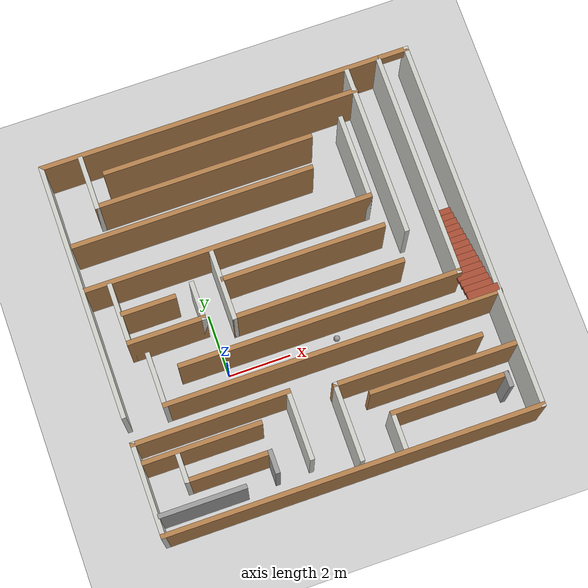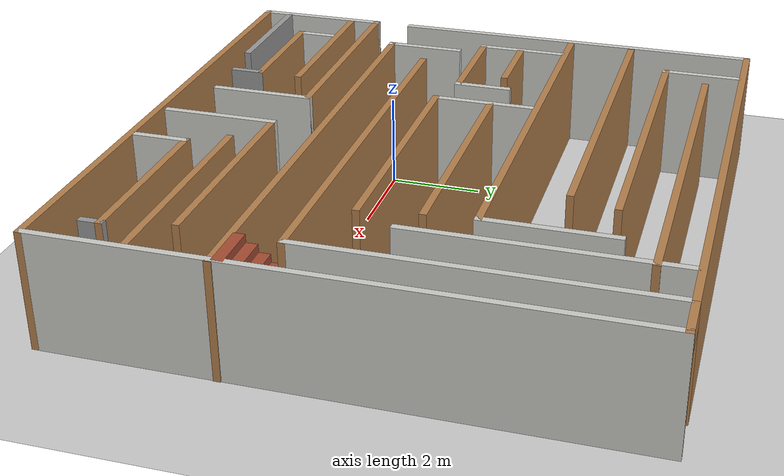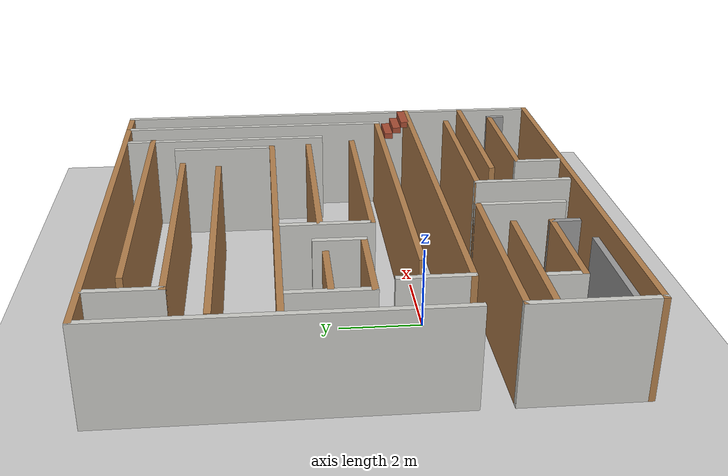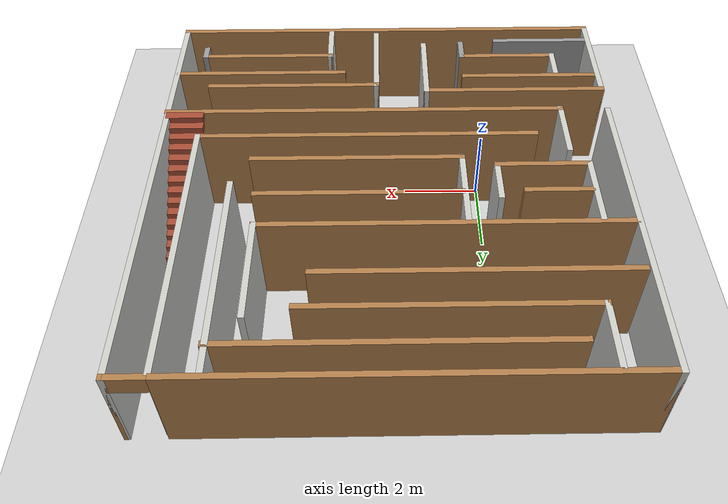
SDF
<sdf version="1.6">
 <world name="default">
  <model name="ground_plane">
   <static>1</static>
   <link name="link">
    <collision name="collision">
     <geometry><plane><normal>0 0 1</normal><size>100 100</size></plane></geometry>
     <surface>
      <contact><collide_bitmask>65535</collide_bitmask></contact>
      <friction><ode><mu>100</mu><mu2>50</mu2></ode></friction>
     </surface>
    </collision>
    <visual name="visual">
     <cast_shadows>0</cast_shadows>
     <geometry><plane><normal>0 0 1</normal><size>100 100</size></plane></geometry>
     <material>
      <script><uri>file://media/materials/scripts/gazebo.material</uri><name>Gazebo/Grey</name></script>
     </material>
    </visual>
   </link>
  </model>
  <light name="sun" type="directional">
   <pose>0 0 10 0 -0 0</pose>
   <diffuse>0.8 0.8 0.8 1</diffuse>
   <specular>0.2 0.2 0.2 1</specular>
   <attenuation>
    <range>1000</range>
    <constant>0.9</constant>
    <linear>0.01</linear>
    <quadratic>0.001</quadratic>
   </attenuation>
   <direction>-0.5 0.1 -0.9</direction>
  </light>
  <gravity>0 0 -9.8</gravity>
  <magnetic_field>6e-06 2.3e-05 -4.2e-05</magnetic_field>
  <atmosphere type="adiabatic"/>
  <physics name="default_physics" default="0" type="ode">
   <max_step_size>0.001</max_step_size>
   <real_time_factor>1</real_time_factor>
   <real_time_update_rate>1000</real_time_update_rate>
  </physics>
  <scene><ambient>0.4 0.4 0.4 1</ambient><background>0.7 0.7 0.7 1</background><shadows>1</shadows></scene>
  <spherical_coordinates>
   <surface_model>EARTH_WGS84</surface_model>
   <latitude_deg>0</latitude_deg>
   <longitude_deg>0</longitude_deg>
   <elevation>0</elevation>
   <heading_deg>0</heading_deg>
  </spherical_coordinates>
  <model name="my_ball">
   <link name="link">
    <inertial>
     <mass>1</mass>
     <inertia><ixx>0.1</ixx><ixy>0</ixy><ixz>0</ixz><iyy>0.1</iyy><iyz>0</iyz><izz>0.1</izz></inertia>
    </inertial>
    <visual name="visual">
     <geometry><sphere><radius>0.1</radius></sphere></geometry>
     <material>
      <script><name>Gazebo/Grey</name><uri>file://media/materials/scripts/gazebo.material</uri></script>
      <shader type="pixel"><normal_map>__default__</normal_map></shader>
      <ambient>1 1 1 1</ambient>
      <diffuse>1 1 1 1</diffuse>
      <specular>1 1 1 1</specular>
      <emissive>1 1 1 1</emissive>
      <lighting>1</lighting>
     </material>
    </visual>
    <collision name="collision">
     <geometry><sphere><radius>0.1</radius></sphere></geometry>
     <surface>
      <friction>
       <ode><mu>1</mu><mu2>1</mu2><fdir1>0 0 0</fdir1><slip1>0</slip1><slip2>0</slip2></ode>
       <torsional>
        <coefficient>1</coefficient>
        <patch_radius>0</patch_radius>
        <surface_radius>0</surface_radius>
        <use_patch_radius>1</use_patch_radius>
        <ode><slip>0</slip></ode>
       </torsional>
      </friction>
      <bounce><restitution_coefficient>0</restitution_coefficient><threshold>1e+06</threshold></bounce>
      <contact>
       <collide_without_contact>0</collide_without_contact>
       <collide_without_contact_bitmask>1</collide_without_contact_bitmask>
       <collide_bitmask>1</collide_bitmask>
       <ode>
        <soft_cfm>0</soft_cfm>
        <soft_erp>0.2</soft_erp>
        <kp>1e+13</kp>
        <kd>1</kd>
        <max_vel>0.01</max_vel>
        <min_depth>0</min_depth>
       </ode>
       <bullet>
        <split_impulse>1</split_impulse>
        <split_impulse_penetration_threshold>-0.01</split_impulse_penetration_threshold>
        <soft_cfm>0</soft_cfm>
        <soft_erp>0.2</soft_erp>
        <kp>1e+13</kp>
        <kd>1</kd>
       </bullet>
      </contact>
     </surface>
    </collision>
   </link>
   <static>0</static>
   <pose>3.53741 0.009797 0.1 1.59318 0.305816 1.43527</pose>
  </model>
  <model name="maze">
   <pose>2.49351 1.575 0 0 -0 0</pose>
   <link name="Stairs_1">
    <visual name="Stairs_1_Visual_0">
     <pose>5.44379 1.15451 0.083333 0 -0 0</pose>
     <geometry><box><size>1 0.233333 0.166667</size></box></geometry>
     <material>
      <script><uri>file://media/materials/scripts/gazebo.material</uri><name>Gazebo/Bricks</name></script>
      <ambient>1 1 1 1</ambient>
     </material>
     <meta><layer>0</layer></meta>
    </visual>
    <collision name="Stairs_1_Collision_0">
     <geometry><box><size>1 0.233333 0.166667</size></box></geometry>
     <pose>5.44379 1.15451 0.083333 0 -0 0</pose>
    </collision>
    <visual name="Stairs_1_Visual_1">
     <pose>5.44379 0.921173 0.25 0 -0 0</pose>
     <geometry><box><size>1 0.233333 0.166667</size></box></geometry>
     <material>
      <script><uri>file://media/materials/scripts/gazebo.material</uri><name>Gazebo/Bricks</name></script>
      <ambient>1 1 1 1</ambient>
     </material>
     <meta><layer>0</layer></meta>
    </visual>
    <collision name="Stairs_1_Collision_1">
     <geometry><box><size>1 0.233333 0.166667</size></box></geometry>
     <pose>5.44379 0.921173 0.25 0 -0 0</pose>
    </collision>
    <visual name="Stairs_1_Visual_2">
     <pose>5.44379 0.68784 0.416667 0 -0 0</pose>
     <geometry><box><size>1 0.233333 0.166667</size></box></geometry>
     <material>
      <script><uri>file://media/materials/scripts/gazebo.material</uri><name>Gazebo/Bricks</name></script>
      <ambient>1 1 1 1</ambient>
     </material>
     <meta><layer>0</layer></meta>
    </visual>
    <collision name="Stairs_1_Collision_2">
     <geometry><box><size>1 0.233333 0.166667</size></box></geometry>
     <pose>5.44379 0.68784 0.416667 0 -0 0</pose>
    </collision>
    <visual name="Stairs_1_Visual_3">
     <pose>5.44379 0.454506 0.583333 0 -0 0</pose>
     <geometry><box><size>1 0.233333 0.166667</size></box></geometry>
     <material>
      <script><uri>file://media/materials/scripts/gazebo.material</uri><name>Gazebo/Bricks</name></script>
      <ambient>1 1 1 1</ambient>
     </material>
     <meta><layer>0</layer></meta>
    </visual>
    <collision name="Stairs_1_Collision_3">
     <geometry><box><size>1 0.233333 0.166667</size></box></geometry>
     <pose>5.44379 0.454506 0.583333 0 -0 0</pose>
    </collision>
    <visual name="Stairs_1_Visual_4">
     <pose>5.44379 0.221173 0.75 0 -0 0</pose>
     <geometry><box><size>1 0.233333 0.166667</size></box></geometry>
     <material>
      <script><uri>file://media/materials/scripts/gazebo.material</uri><name>Gazebo/Bricks</name></script>
      <ambient>1 1 1 1</ambient>
     </material>
     <meta><layer>0</layer></meta>
    </visual>
    <collision name="Stairs_1_Collision_4">
     <geometry><box><size>1 0.233333 0.166667</size></box></geometry>
     <pose>5.44379 0.221173 0.75 0 -0 0</pose>
    </collision>
    <visual name="Stairs_1_Visual_5">
     <pose>5.44379 -0.01216 0.916667 0 -0 0</pose>
     <geometry><box><size>1 0.233333 0.166667</size></box></geometry>
     <material>
      <script><uri>file://media/materials/scripts/gazebo.material</uri><name>Gazebo/Bricks</name></script>
      <ambient>1 1 1 1</ambient>
     </material>
     <meta><layer>0</layer></meta>
    </visual>
    <collision name="Stairs_1_Collision_5">
     <geometry><box><size>1 0.233333 0.166667</size></box></geometry>
     <pose>5.44379 -0.01216 0.916667 0 -0 0</pose>
    </collision>
    <visual name="Stairs_1_Visual_6">
     <pose>5.44379 -0.245494 1.08333 0 -0 0</pose>
     <geometry><box><size>1 0.233333 0.166667</size></box></geometry>
     <material>
      <script><uri>file://media/materials/scripts/gazebo.material</uri><name>Gazebo/Bricks</name></script>
      <ambient>1 1 1 1</ambient>
     </material>
     <meta><layer>0</layer></meta>
    </visual>
    <collision name="Stairs_1_Collision_6">
     <geometry><box><size>1 0.233333 0.166667</size></box></geometry>
     <pose>5.44379 -0.245494 1.08333 0 -0 0</pose>
    </collision>
    <visual name="Stairs_1_Visual_7">
     <pose>5.44379 -0.478827 1.25 0 -0 0</pose>
     <geometry><box><size>1 0.233333 0.166667</size></box></geometry>
     <material>
      <script><uri>file://media/materials/scripts/gazebo.material</uri><name>Gazebo/Bricks</name></script>
      <ambient>1 1 1 1</ambient>
     </material>
     <meta><layer>0</layer></meta>
    </visual>
    <collision name="Stairs_1_Collision_7">
     <geometry><box><size>1 0.233333 0.166667</size></box></geometry>
     <pose>5.44379 -0.478827 1.25 0 -0 0</pose>
    </collision>
    <visual name="Stairs_1_Visual_8">
     <pose>5.44379 -0.71216 1.41667 0 -0 0</pose>
     <geometry><box><size>1 0.233333 0.166667</size></box></geometry>
     <material>
      <script><uri>file://media/materials/scripts/gazebo.material</uri><name>Gazebo/Bricks</name></script>
      <ambient>1 1 1 1</ambient>
     </material>
     <meta><layer>0</layer></meta>
    </visual>
    <collision name="Stairs_1_Collision_8">
     <geometry><box><size>1 0.233333 0.166667</size></box></geometry>
     <pose>5.44379 -0.71216 1.41667 0 -0 0</pose>
    </collision>
    <visual name="Stairs_1_Visual_9">
     <pose>5.44379 -0.945494 1.58333 0 -0 0</pose>
     <geometry><box><size>1 0.233333 0.166667</size></box></geometry>
     <material>
      <script><uri>file://media/materials/scripts/gazebo.material</uri><name>Gazebo/Bricks</name></script>
      <ambient>1 1 1 1</ambient>
     </material>
     <meta><layer>0</layer></meta>
    </visual>
    <collision name="Stairs_1_Collision_9">
     <geometry><box><size>1 0.233333 0.166667</size></box></geometry>
     <pose>5.44379 -0.945494 1.58333 0 -0 0</pose>
    </collision>
    <visual name="Stairs_1_Visual_10">
     <pose>5.44379 -1.17883 1.75 0 -0 0</pose>
     <geometry><box><size>1 0.233333 0.166667</size></box></geometry>
     <material>
      <script><uri>file://media/materials/scripts/gazebo.material</uri><name>Gazebo/Bricks</name></script>
      <ambient>1 1 1 1</ambient>
     </material>
     <meta><layer>0</layer></meta>
    </visual>
    <collision name="Stairs_1_Collision_10">
     <geometry><box><size>1 0.233333 0.166667</size></box></geometry>
     <pose>5.44379 -1.17883 1.75 0 -0 0</pose>
    </collision>
    <visual name="Stairs_1_Visual_11">
     <pose>5.44379 -1.41216 1.91667 0 -0 0</pose>
     <geometry><box><size>1 0.233333 0.166667</size></box></geometry>
     <material>
      <script><uri>file://media/materials/scripts/gazebo.material</uri><name>Gazebo/Bricks</name></script>
      <ambient>1 1 1 1</ambient>
     </material>
     <meta><layer>0</layer></meta>
    </visual>
    <collision name="Stairs_1_Collision_11">
     <geometry><box><size>1 0.233333 0.166667</size></box></geometry>
     <pose>5.44379 -1.41216 1.91667 0 -0 0</pose>
    </collision>
    <visual name="Stairs_1_Visual_12">
     <pose>5.44379 -1.64549 2.08333 0 -0 0</pose>
     <geometry><box><size>1 0.233333 0.166667</size></box></geometry>
     <material>
      <script><uri>file://media/materials/scripts/gazebo.material</uri><name>Gazebo/Bricks</name></script>
      <ambient>1 1 1 1</ambient>
     </material>
     <meta><layer>0</layer></meta>
    </visual>
    <collision name="Stairs_1_Collision_12">
     <geometry><box><size>1 0.233333 0.166667</size></box></geometry>
     <pose>5.44379 -1.64549 2.08333 0 -0 0</pose>
    </collision>
    <visual name="Stairs_1_Visual_13">
     <pose>5.44379 -1.87883 2.25 0 -0 0</pose>
     <geometry><box><size>1 0.233333 0.166667</size></box></geometry>
     <material>
      <script><uri>file://media/materials/scripts/gazebo.material</uri><name>Gazebo/Bricks</name></script>
      <ambient>1 1 1 1</ambient>
     </material>
     <meta><layer>0</layer></meta>
    </visual>
    <collision name="Stairs_1_Collision_13">
     <geometry><box><size>1 0.233333 0.166667</size></box></geometry>
     <pose>5.44379 -1.87883 2.25 0 -0 0</pose>
    </collision>
    <visual name="Stairs_1_Visual_14">
     <pose>5.44379 -2.11216 2.41667 0 -0 0</pose>
     <geometry><box><size>1 0.233333 0.166667</size></box></geometry>
     <material>
      <script><uri>file://media/materials/scripts/gazebo.material</uri><name>Gazebo/Bricks</name></script>
      <ambient>1 1 1 1</ambient>
     </material>
     <meta><layer>0</layer></meta>
    </visual>
    <collision name="Stairs_1_Collision_14">
     <geometry><box><size>1 0.233333 0.166667</size></box></geometry>
     <pose>5.44379 -2.11216 2.41667 0 -0 0</pose>
    </collision>
   </link>
   <link name="Wall_0">
    <collision name="Wall_0_Collision">
     <geometry><box><size>8.25 0.15 2.5</size></box></geometry>
     <pose>0 0 1.25 0 -0 0</pose>
    </collision>
    <visual name="Wall_0_Visual">
     <pose>0 0 1.25 0 -0 0</pose>
     <geometry><box><size>8.25 0.15 2.5</size></box></geometry>
     <material>
      <script><uri>file://media/materials/scripts/gazebo.material</uri><name>Gazebo/CeilingTiled</name></script>
      <ambient>1 1 1 1</ambient>
     </material>
     <meta><layer>0</layer></meta>
    </visual>
    <pose>-5.93351 1.875 0 0 -0 1.5708</pose>
   </link>
   <link name="Wall_1">
    <pose>-0.008514 5.925 0 0 -0 0</pose>
    <visual name="Wall_1_Visual_0">
     <pose>-0.497211 0 1.25 0 -0 0</pose>
     <geometry><box><size>11.0056 0.15 2.5</size></box></geometry>
     <material>
      <script><uri>file://media/materials/scripts/gazebo.material</uri><name>Gazebo/Wood</name></script>
      <ambient>1 1 1 1</ambient>
     </material>
     <meta><layer>0</layer></meta>
    </visual>
    <collision name="Wall_1_Collision_0">
     <geometry><box><size>11.0056 0.15 2.5</size></box></geometry>
     <pose>-0.497211 0 1.25 0 -0 0</pose>
    </collision>
    <visual name="Wall_1_Visual_1">
     <pose>5.95279 0 1.25 0 -0 0</pose>
     <geometry><box><size>0.094422 0.15 2.5</size></box></geometry>
     <material>
      <script><uri>file://media/materials/scripts/gazebo.material</uri><name>Gazebo/Wood</name></script>
      <ambient>1 1 1 1</ambient>
     </material>
     <meta><layer>0</layer></meta>
    </visual>
    <collision name="Wall_1_Collision_1">
     <geometry><box><size>0.094422 0.15 2.5</size></box></geometry>
     <pose>5.95279 0 1.25 0 -0 0</pose>
    </collision>
    <visual name="Wall_1_Visual_2">
     <pose>5.45558 0 2.25 0 -0 0</pose>
     <geometry><box><size>0.9 0.15 0.5</size></box></geometry>
     <material>
      <script><uri>file://media/materials/scripts/gazebo.material</uri><name>Gazebo/Wood</name></script>
      <ambient>1 1 1 1</ambient>
     </material>
     <meta><layer>0</layer></meta>
    </visual>
    <collision name="Wall_1_Collision_2">
     <geometry><box><size>0.9 0.15 0.5</size></box></geometry>
     <pose>5.45558 0 2.25 0 -0 0</pose>
    </collision>
   </link>
   <link name="Wall_11">
    <collision name="Wall_11_Collision">
     <geometry><box><size>7.25 0.15 2.5</size></box></geometry>
     <pose>0 0 1.25 0 -0 0</pose>
    </collision>
    <visual name="Wall_11_Visual">
     <pose>0 0 1.25 0 -0 0</pose>
     <geometry><box><size>7.25 0.15 2.5</size></box></geometry>
     <material>
      <script><uri>file://media/materials/scripts/gazebo.material</uri><name>Gazebo/CeilingTiled</name></script>
      <ambient>1 1 1 1</ambient>
     </material>
     <meta><layer>0</layer></meta>
    </visual>
    <pose>4.98905 2.2676 0 0 0 -1.5708</pose>
   </link>
   <link name="Wall_12">
    <collision name="Wall_12_Collision">
     <geometry><box><size>9 0.15 2.5</size></box></geometry>
     <pose>0 0 1.25 0 -0 0</pose>
    </collision>
    <visual name="Wall_12_Visual">
     <pose>0 0 1.25 0 -0 0</pose>
     <geometry><box><size>9 0.15 2.5</size></box></geometry>
     <material>
      <script><uri>file://media/materials/scripts/gazebo.material</uri><name>Gazebo/Wood</name></script>
      <ambient>1 1 1 1</ambient>
     </material>
     <meta><layer>0</layer></meta>
    </visual>
    <pose>0.564051 -1.2824 0 0 -0 3.14159</pose>
   </link>
   <link name="Wall_14">
    <collision name="Wall_14_Collision">
     <geometry><box><size>2.25 0.15 2.5</size></box></geometry>
     <pose>0 0 1.25 0 -0 0</pose>
    </collision>
    <visual name="Wall_14_Visual">
     <pose>0 0 1.25 0 -0 0</pose>
     <geometry><box><size>2.25 0.15 2.5</size></box></geometry>
     <material>
      <script><uri>file://media/materials/scripts/gazebo.material</uri><name>Gazebo/CeilingTiled</name></script>
      <ambient>1 1 1 1</ambient>
     </material>
     <meta><layer>0</layer></meta>
    </visual>
    <pose>-1.86705 0.639941 0 0 0 -1.5708</pose>
   </link>
   <link name="Wall_15">
    <collision name="Wall_15_Collision">
     <geometry><box><size>5.5 0.15 2.5</size></box></geometry>
     <pose>0 0 1.25 0 -0 0</pose>
    </collision>
    <visual name="Wall_15_Visual">
     <pose>0 0 1.25 0 -0 0</pose>
     <geometry><box><size>5.5 0.15 2.5</size></box></geometry>
     <material>
      <script><uri>file://media/materials/scripts/gazebo.material</uri><name>Gazebo/Wood</name></script>
      <ambient>1 1 1 1</ambient>
     </material>
     <meta><layer>0</layer></meta>
    </visual>
    <pose>0.807947 -0.410059 0 0 -0 0</pose>
   </link>
   <link name="Wall_17">
    <collision name="Wall_17_Collision">
     <geometry><box><size>5.5 0.15 2.5</size></box></geometry>
     <pose>0 0 1.25 0 -0 0</pose>
    </collision>
    <visual name="Wall_17_Visual">
     <pose>0 0 1.25 0 -0 0</pose>
     <geometry><box><size>5.5 0.15 2.5</size></box></geometry>
     <material>
      <script><uri>file://media/materials/scripts/gazebo.material</uri><name>Gazebo/CeilingTiled</name></script>
      <ambient>1 1 1 1</ambient>
     </material>
     <meta><layer>0</layer></meta>
    </visual>
    <pose>3.93965 3.1426 0 0 0 -1.5708</pose>
   </link>
   <link name="Wall_19">
    <collision name="Wall_19_Collision">
     <geometry><box><size>7.75 0.15 2.5</size></box></geometry>
     <pose>0 0 1.25 0 -0 0</pose>
    </collision>
    <visual name="Wall_19_Visual">
     <pose>0 0 1.25 0 -0 0</pose>
     <geometry><box><size>7.75 0.15 2.5</size></box></geometry>
     <material>
      <script><uri>file://media/materials/scripts/gazebo.material</uri><name>Gazebo/Wood</name></script>
      <ambient>1 1 1 1</ambient>
     </material>
     <meta><layer>0</layer></meta>
    </visual>
    <pose>-1.94985 3.26405 0 0 -0 0</pose>
   </link>
   <link name="Wall_2">
    <collision name="Wall_2_Collision">
     <geometry><box><size>12 0.15 2.5</size></box></geometry>
     <pose>0 0 1.25 0 -0 0</pose>
    </collision>
    <visual name="Wall_2_Visual">
     <pose>0 0 1.25 0 -0 0</pose>
     <geometry><box><size>12 0.15 2.5</size></box></geometry>
     <material>
      <script><uri>file://media/materials/scripts/gazebo.material</uri><name>Gazebo/CeilingTiled</name></script>
      <ambient>1 1 1 1</ambient>
     </material>
     <meta><layer>0</layer></meta>
    </visual>
    <pose>5.91649 0 0 0 0 -1.5708</pose>
   </link>
   <link name="Wall_21">
    <collision name="Wall_21_Collision">
     <geometry><box><size>5.25 0.15 2.5</size></box></geometry>
     <pose>0 0 1.25 0 -0 0</pose>
    </collision>
    <visual name="Wall_21_Visual">
     <pose>0 0 1.25 0 -0 0</pose>
     <geometry><box><size>5.25 0.15 2.5</size></box></geometry>
     <material>
      <script><uri>file://media/materials/scripts/gazebo.material</uri><name>Gazebo/Wood</name></script>
      <ambient>1 1 1 1</ambient>
     </material>
     <meta><layer>0</layer></meta>
    </visual>
    <pose>0.752907 0.815438 0 0 -0 0</pose>
   </link>
   <link name="Wall_23">
    <collision name="Wall_23_Collision">
     <geometry><box><size>2 0.15 2.5</size></box></geometry>
     <pose>0 0 1.25 0 -0 0</pose>
    </collision>
    <visual name="Wall_23_Visual">
     <pose>0 0 1.25 0 -0 0</pose>
     <geometry><box><size>2 0.15 2.5</size></box></geometry>
     <material>
      <script><uri>file://media/materials/scripts/gazebo.material</uri><name>Gazebo/CeilingTiled</name></script>
      <ambient>1 1 1 1</ambient>
     </material>
     <meta><layer>0</layer></meta>
    </visual>
    <pose>-5.08523 0.799921 0 0 0 -1.5708</pose>
   </link>
   <link name="Wall_24">
    <collision name="Wall_24_Collision">
     <geometry><box><size>2.5 0.15 2.5</size></box></geometry>
     <pose>0 0 1.25 0 -0 0</pose>
    </collision>
    <visual name="Wall_24_Visual">
     <pose>0 0 1.25 0 -0 0</pose>
     <geometry><box><size>2.5 0.15 2.5</size></box></geometry>
     <material>
      <script><uri>file://media/materials/scripts/gazebo.material</uri><name>Gazebo/Wood</name></script>
      <ambient>1 1 1 1</ambient>
     </material>
     <meta><layer>0</layer></meta>
    </visual>
    <pose>-3.91023 -0.125079 0 0 -0 0</pose>
   </link>
   <link name="Wall_25">
    <collision name="Wall_25_Collision">
     <geometry><box><size>1.25 0.15 2.5</size></box></geometry>
     <pose>0 0 1.25 0 -0 0</pose>
    </collision>
    <visual name="Wall_25_Visual">
     <pose>0 0 1.25 0 -0 0</pose>
     <geometry><box><size>1.25 0.15 2.5</size></box></geometry>
     <material>
      <script><uri>file://media/materials/scripts/gazebo.material</uri><name>Gazebo/CeilingTiled</name></script>
      <ambient>1 1 1 1</ambient>
     </material>
     <meta><layer>0</layer></meta>
    </visual>
    <pose>-2.73522 0.424921 0 0 -0 1.5708</pose>
   </link>
   <link name="Wall_27">
    <collision name="Wall_27_Collision">
     <geometry><box><size>1.75 0.15 2.5</size></box></geometry>
     <pose>0 0 1.25 0 -0 0</pose>
    </collision>
    <visual name="Wall_27_Visual">
     <pose>0 0 1.25 0 -0 0</pose>
     <geometry><box><size>1.75 0.15 2.5</size></box></geometry>
     <material>
      <script><uri>file://media/materials/scripts/gazebo.material</uri><name>Gazebo/Wood</name></script>
      <ambient>1 1 1 1</ambient>
     </material>
     <meta><layer>0</layer></meta>
    </visual>
    <pose>-4.18028 0.780457 0 0 -0 0</pose>
   </link>
   <link name="Wall_29">
    <collision name="Wall_29_Collision">
     <geometry><box><size>1.75 0.15 2.5</size></box></geometry>
     <pose>0 0 1.25 0 -0 0</pose>
    </collision>
    <visual name="Wall_29_Visual">
     <pose>0 0 1.25 0 -0 0</pose>
     <geometry><box><size>1.75 0.15 2.5</size></box></geometry>
     <material>
      <script><uri>file://media/materials/scripts/gazebo.material</uri><name>Gazebo/CeilingTiled</name></script>
      <ambient>1 1 1 1</ambient>
     </material>
     <meta><layer>0</layer></meta>
    </visual>
    <pose>-4.70044 5.0176 0 0 0 -1.5708</pose>
   </link>
   <link name="Wall_3">
    <collision name="Wall_3_Collision">
     <geometry><box><size>12 0.15 2.5</size></box></geometry>
     <pose>0 0 1.25 0 -0 0</pose>
    </collision>
    <visual name="Wall_3_Visual">
     <pose>0 0 1.25 0 -0 0</pose>
     <geometry><box><size>12 0.15 2.5</size></box></geometry>
     <material>
      <script><uri>file://media/materials/scripts/gazebo.material</uri><name>Gazebo/Wood</name></script>
      <ambient>1 1 1 1</ambient>
     </material>
     <meta><layer>0</layer></meta>
    </visual>
    <pose>-0.008514 -5.925 0 0 -0 3.14159</pose>
   </link>
   <link name="Wall_30">
    <collision name="Wall_30_Collision">
     <geometry><box><size>7 0.15 2.5</size></box></geometry>
     <pose>0 0 1.25 0 -0 0</pose>
    </collision>
    <visual name="Wall_30_Visual">
     <pose>0 0 1.25 0 -0 0</pose>
     <geometry><box><size>7 0.15 2.5</size></box></geometry>
     <material>
      <script><uri>file://media/materials/scripts/gazebo.material</uri><name>Gazebo/Wood</name></script>
      <ambient>1 1 1 1</ambient>
     </material>
     <meta><layer>0</layer></meta>
    </visual>
    <pose>-1.27544 4.2176 0 0 -0 0</pose>
   </link>
   <link name="Wall_32">
    <collision name="Wall_32_Collision">
     <geometry><box><size>8.25 0.15 2.5</size></box></geometry>
     <pose>0 0 1.25 0 -0 0</pose>
    </collision>
    <visual name="Wall_32_Visual">
     <pose>0 0 1.25 0 -0 0</pose>
     <geometry><box><size>8.25 0.15 2.5</size></box></geometry>
     <material>
      <script><uri>file://media/materials/scripts/gazebo.material</uri><name>Gazebo/Wood</name></script>
      <ambient>1 1 1 1</ambient>
     </material>
     <meta><layer>0</layer></meta>
    </visual>
    <pose>-0.075372 5.15297 0 0 -0 3.14159</pose>
   </link>
   <link name="Wall_34">
    <collision name="Wall_34_Collision">
     <geometry><box><size>10.75 0.15 2.5</size></box></geometry>
     <pose>0 0 1.25 0 -0 0</pose>
    </collision>
    <visual name="Wall_34_Visual">
     <pose>0 0 1.25 0 -0 0</pose>
     <geometry><box><size>10.75 0.15 2.5</size></box></geometry>
     <material>
      <script><uri>file://media/materials/scripts/gazebo.material</uri><name>Gazebo/Wood</name></script>
      <ambient>1 1 1 1</ambient>
     </material>
     <meta><layer>0</layer></meta>
    </visual>
    <pose>0.633515 -2.26281 0 0 -0 3.14159</pose>
   </link>
   <link name="Wall_35">
    <collision name="Wall_35_Collision">
     <geometry><box><size>1.75 0.15 2.5</size></box></geometry>
     <pose>0 0 1.25 0 -0 0</pose>
    </collision>
    <visual name="Wall_35_Visual">
     <pose>0 0 1.25 0 -0 0</pose>
     <geometry><box><size>1.75 0.15 2.5</size></box></geometry>
     <material>
      <script><uri>file://media/materials/scripts/gazebo.material</uri><name>Gazebo/CeilingTiled</name></script>
      <ambient>1 1 1 1</ambient>
     </material>
     <meta><layer>0</layer></meta>
    </visual>
    <pose>-4.66648 -1.46281 0 0 -0 1.5708</pose>
   </link>
   <link name="Wall_37">
    <collision name="Wall_37_Collision">
     <geometry><box><size>3.75 0.15 2.5</size></box></geometry>
     <pose>0 0 1.25 0 -0 0</pose>
    </collision>
    <visual name="Wall_37_Visual">
     <pose>0 0 1.25 0 -0 0</pose>
     <geometry><box><size>3.75 0.15 2.5</size></box></geometry>
     <material>
      <script><uri>file://media/materials/scripts/gazebo.material</uri><name>Gazebo/Wood</name></script>
      <ambient>1 1 1 1</ambient>
     </material>
     <meta><layer>0</layer></meta>
    </visual>
    <pose>-3.98483 -3.697 0 0 -0 0</pose>
   </link>
   <link name="Wall_39">
    <collision name="Wall_39_Collision">
     <geometry><box><size>1 0.15 2.5</size></box></geometry>
     <pose>0 0 1.25 0 -0 0</pose>
    </collision>
    <visual name="Wall_39_Visual">
     <pose>0 0 1.25 0 -0 0</pose>
     <geometry><box><size>1 0.15 2.5</size></box></geometry>
     <material>
      <script><uri>file://media/materials/scripts/gazebo.material</uri><name>Gazebo/CeilingTiled</name></script>
      <ambient>1 1 1 1</ambient>
     </material>
     <meta><layer>0</layer></meta>
    </visual>
    <pose>-4.7704 -4.19196 0 0 0 -1.5708</pose>
   </link>
   <link name="Wall_4">
    <collision name="Wall_4_Collision">
     <geometry><box><size>3 0.15 2.5</size></box></geometry>
     <pose>0 0 1.25 0 -0 0</pose>
    </collision>
    <visual name="Wall_4_Visual">
     <pose>0 0 1.25 0 -0 0</pose>
     <geometry><box><size>3 0.15 2.5</size></box></geometry>
     <material>
      <script><uri>file://media/materials/scripts/gazebo.material</uri><name>Gazebo/CeilingTiled</name></script>
      <ambient>1 1 1 1</ambient>
     </material>
     <meta><layer>0</layer></meta>
    </visual>
    <pose>-5.93351 -4.5 0 0 -0 1.5708</pose>
   </link>
   <link name="Wall_40">
    <collision name="Wall_40_Collision">
     <geometry><box><size>2.75 0.15 2.5</size></box></geometry>
     <pose>0 0 1.25 0 -0 0</pose>
    </collision>
    <visual name="Wall_40_Visual">
     <pose>0 0 1.25 0 -0 0</pose>
     <geometry><box><size>2.75 0.15 2.5</size></box></geometry>
     <material>
      <script><uri>file://media/materials/scripts/gazebo.material</uri><name>Gazebo/Wood</name></script>
      <ambient>1 1 1 1</ambient>
     </material>
     <meta><layer>0</layer></meta>
    </visual>
    <pose>-3.4704 -4.61696 0 0 -0 0</pose>
   </link>
   <link name="Wall_41">
    <collision name="Wall_41_Collision">
     <geometry><box><size>0.75 0.15 2.5</size></box></geometry>
     <pose>0 0 1.25 0 -0 0</pose>
    </collision>
    <visual name="Wall_41_Visual">
     <pose>0 0 1.25 0 -0 0</pose>
     <geometry><box><size>0.75 0.15 2.5</size></box></geometry>
     <material>
      <script><uri>file://media/materials/scripts/gazebo.material</uri><name>Gazebo/Grey</name></script>
      <ambient>1 1 1 1</ambient>
     </material>
     <meta><layer>0</layer></meta>
    </visual>
    <pose>-2.1704 -4.91696 0 0 0 -1.5708</pose>
   </link>
   <link name="Wall_43">
    <collision name="Wall_43_Collision">
     <geometry><box><size>2.75 0.15 2.5</size></box></geometry>
     <pose>0 0 1.25 0 -0 0</pose>
    </collision>
    <visual name="Wall_43_Visual">
     <pose>0 0 1.25 0 -0 0</pose>
     <geometry><box><size>2.75 0.15 2.5</size></box></geometry>
     <material>
      <script><uri>file://media/materials/scripts/gazebo.material</uri><name>Gazebo/Grey</name></script>
      <ambient>1 1 1 1</ambient>
     </material>
     <meta><layer>0</layer></meta>
    </visual>
    <pose>-4.51981 -5.34106 0 0 -0 0</pose>
   </link>
   <link name="Wall_45">
    <collision name="Wall_45_Collision">
     <geometry><box><size>2.5 0.15 2.5</size></box></geometry>
     <pose>0 0 1.25 0 -0 0</pose>
    </collision>
    <visual name="Wall_45_Visual">
     <pose>0 0 1.25 0 -0 0</pose>
     <geometry><box><size>2.5 0.15 2.5</size></box></geometry>
     <material>
      <script><uri>file://media/materials/scripts/gazebo.material</uri><name>Gazebo/CeilingTiled</name></script>
      <ambient>1 1 1 1</ambient>
     </material>
     <meta><layer>0</layer></meta>
    </visual>
    <pose>0.301715 -4.51587 0 0 -0 1.5708</pose>
   </link>
   <link name="Wall_46">
    <collision name="Wall_46_Collision">
     <geometry><box><size>4.75 0.15 2.5</size></box></geometry>
     <pose>0 0 1.25 0 -0 0</pose>
    </collision>
    <visual name="Wall_46_Visual">
     <pose>0 0 1.25 0 -0 0</pose>
     <geometry><box><size>4.75 0.15 2.5</size></box></geometry>
     <material>
      <script><uri>file://media/materials/scripts/gazebo.material</uri><name>Gazebo/Wood</name></script>
      <ambient>1 1 1 1</ambient>
     </material>
     <meta><layer>0</layer></meta>
    </visual>
    <pose>2.60171 -3.34087 0 0 -0 0</pose>
   </link>
   <link name="Wall_48">
    <collision name="Wall_48_Collision">
     <geometry><box><size>4.75 0.15 2.5</size></box></geometry>
     <pose>0 0 1.25 0 -0 0</pose>
    </collision>
    <visual name="Wall_48_Visual">
     <pose>0 0 1.25 0 -0 0</pose>
     <geometry><box><size>4.75 0.15 2.5</size></box></geometry>
     <material>
      <script><uri>file://media/materials/scripts/gazebo.material</uri><name>Gazebo/Wood</name></script>
      <ambient>1 1 1 1</ambient>
     </material>
     <meta><layer>0</layer></meta>
    </visual>
    <pose>3.54934 -3.91023 0 0 -0 3.14159</pose>
   </link>
   <link name="Wall_5">
    <collision name="Wall_5_Collision">
     <geometry><box><size>5 0.15 2.5</size></box></geometry>
     <pose>0 0 1.25 0 -0 0</pose>
    </collision>
    <visual name="Wall_5_Visual">
     <pose>0 0 1.25 0 -0 0</pose>
     <geometry><box><size>5 0.15 2.5</size></box></geometry>
     <material>
      <script><uri>file://media/materials/scripts/gazebo.material</uri><name>Gazebo/Wood</name></script>
      <ambient>1 1 1 1</ambient>
     </material>
     <meta><layer>0</layer></meta>
    </visual>
    <pose>-3.50851 -3.075 0 0 -0 0</pose>
   </link>
   <link name="Wall_50">
    <collision name="Wall_50_Collision">
     <geometry><box><size>1.25 0.15 2.5</size></box></geometry>
     <pose>0 0 1.25 0 -0 0</pose>
    </collision>
    <visual name="Wall_50_Visual">
     <pose>0 0 1.25 0 -0 0</pose>
     <geometry><box><size>1.25 0.15 2.5</size></box></geometry>
     <material>
      <script><uri>file://media/materials/scripts/gazebo.material</uri><name>Gazebo/CeilingTiled</name></script>
      <ambient>1 1 1 1</ambient>
     </material>
     <meta><layer>0</layer></meta>
    </visual>
    <pose>1.62549 -5.2509 0 0 -0 1.5708</pose>
   </link>
   <link name="Wall_51">
    <collision name="Wall_51_Collision">
     <geometry><box><size>3.75 0.15 2.5</size></box></geometry>
     <pose>0 0 1.25 0 -0 0</pose>
    </collision>
    <visual name="Wall_51_Visual">
     <pose>0 0 1.25 0 -0 0</pose>
     <geometry><box><size>3.75 0.15 2.5</size></box></geometry>
     <material>
      <script><uri>file://media/materials/scripts/gazebo.material</uri><name>Gazebo/Wood</name></script>
      <ambient>1 1 1 1</ambient>
     </material>
     <meta><layer>0</layer></meta>
    </visual>
    <pose>3.42549 -4.7009 0 0 -0 0</pose>
   </link>
   <link name="Wall_52">
    <collision name="Wall_52_Collision">
     <geometry><box><size>0.5 0.15 2.5</size></box></geometry>
     <pose>0 0 1.25 0 -0 0</pose>
    </collision>
    <visual name="Wall_52_Visual">
     <pose>0 0 1.25 0 -0 0</pose>
     <geometry><box><size>0.5 0.15 2.5</size></box></geometry>
     <material>
      <script><uri>file://media/materials/scripts/gazebo.material</uri><name>Gazebo/Grey</name></script>
      <ambient>1 1 1 1</ambient>
     </material>
     <meta><layer>0</layer></meta>
    </visual>
    <pose>5.22548 -4.8759 0 0 0 -1.5708</pose>
   </link>
   <link name="Wall_6">
    <collision name="Wall_6_Collision">
     <geometry><box><size>2.25 0.15 2.5</size></box></geometry>
     <pose>0 0 1.25 0 -0 0</pose>
    </collision>
    <visual name="Wall_6_Visual">
     <pose>0 0 1.25 0 -0 0</pose>
     <geometry><box><size>2.25 0.15 2.5</size></box></geometry>
     <material>
      <script><uri>file://media/materials/scripts/gazebo.material</uri><name>Gazebo/CeilingTiled</name></script>
      <ambient>1 1 1 1</ambient>
     </material>
     <meta><layer>0</layer></meta>
    </visual>
    <pose>-1.08351 -4.125 0 0 0 -1.5708</pose>
   </link>
   <link name="Wall_8">
    <collision name="Wall_8_Collision">
     <geometry><box><size>9.25 0.15 2.5</size></box></geometry>
     <pose>0 0 1.25 0 -0 0</pose>
    </collision>
    <visual name="Wall_8_Visual">
     <pose>0 0 1.25 0 -0 0</pose>
     <geometry><box><size>9.25 0.15 2.5</size></box></geometry>
     <material>
      <script><uri>file://media/materials/scripts/gazebo.material</uri><name>Gazebo/Wood</name></script>
      <ambient>1 1 1 1</ambient>
     </material>
     <meta><layer>0</layer></meta>
    </visual>
    <pose>-1.30479 1.82986 0 0 -0 0</pose>
   </link>
   <link name="Wall_9">
    <collision name="Wall_9_Collision">
     <geometry><box><size>2.75 0.15 2.5</size></box></geometry>
     <pose>0 0 1.25 0 -0 0</pose>
    </collision>
    <visual name="Wall_9_Visual">
     <pose>0 0 1.25 0 -0 0</pose>
     <geometry><box><size>2.75 0.15 2.5</size></box></geometry>
     <material>
      <script><uri>file://media/materials/scripts/gazebo.material</uri><name>Gazebo/CeilingTiled</name></script>
      <ambient>1 1 1 1</ambient>
     </material>
     <meta><layer>0</layer></meta>
    </visual>
    <pose>3.24521 3.12986 0 0 -0 1.5708</pose>
   </link>
   <static>1</static>
  </model>
 </world>
</sdf>
